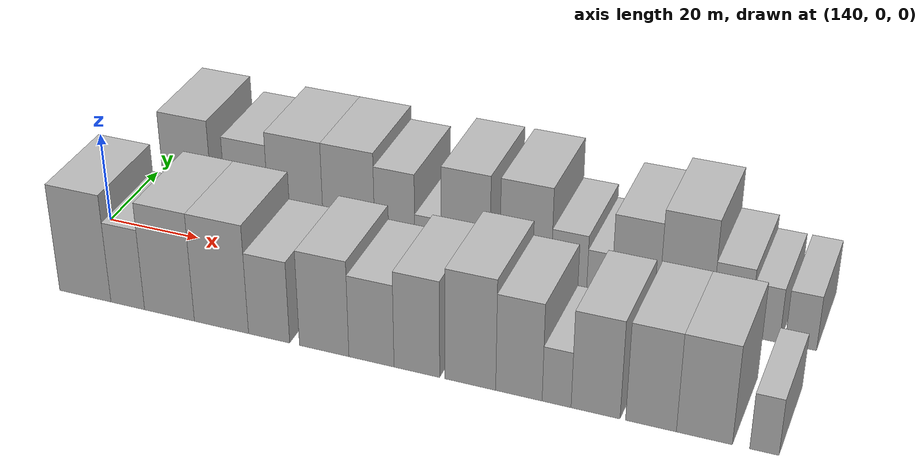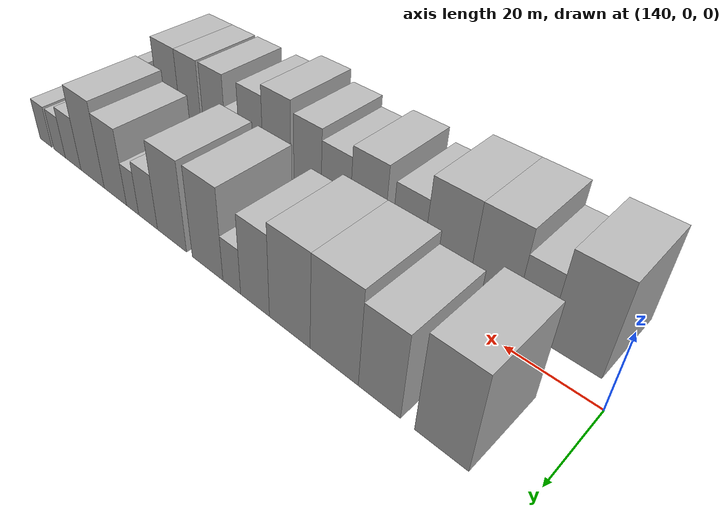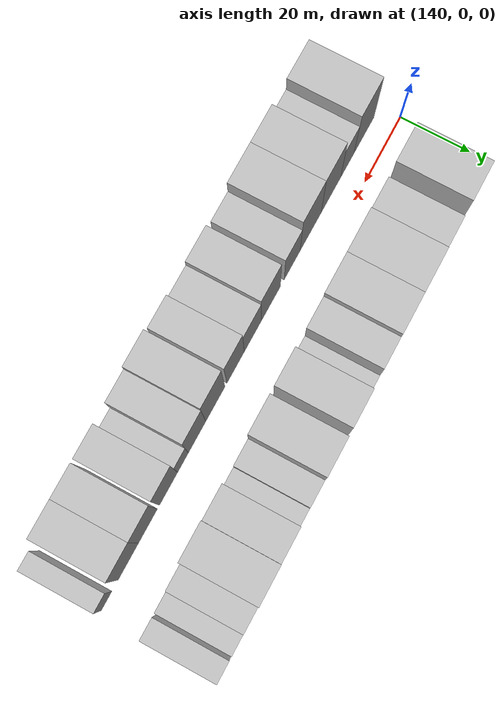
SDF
<sdf version="1.6">
 <world name="default">
  <model name="building_16">
   <static>1</static>
   <pose>155.1598 16.0000 0 0.000000 0.000000 1.570796</pose>
   <link name="link">
    <pose>0 0 12.00 0 0 0</pose>
    <collision name="collision"><geometry><box><size>20.0000 10.9359 24.0000</size></box></geometry></collision>
    <visual name="visual">
     <cast_shadows>0</cast_shadows>
     <geometry><box><size>20.0000 10.9359 24.0000</size></box></geometry>
     <material>
      <script>
       <uri>model://HANNAS_wall/materials/scripts</uri>
       <uri>model://HANNAS_wall/materials/textures</uri>
       <name>vrc/HANNAS_wall</name>
      </script>
     </material>
    </visual>
   </link>
  </model>
  <model name="building_17">
   <static>1</static>
   <pose>168.4141 16.0000 0 0.000000 0.000000 1.570796</pose>
   <link name="link">
    <pose>0 0 10.50 0 0 0</pose>
    <collision name="collision"><geometry><box><size>20.0000 9.5728 21.0000</size></box></geometry></collision>
    <visual name="visual">
     <cast_shadows>0</cast_shadows>
     <geometry><box><size>20.0000 9.5728 21.0000</size></box></geometry>
     <material>
      <script>
       <uri>model://HANNAS_wall/materials/scripts</uri>
       <uri>model://HANNAS_wall/materials/textures</uri>
       <name>vrc/HANNAS_wall</name>
      </script>
     </material>
    </visual>
   </link>
  </model>
  <model name="building_18">
   <static>1</static>
   <pose>179.1956 16.0000 0 0.000000 0.000000 1.570796</pose>
   <link name="link">
    <pose>0 0 12.00 0 0 0</pose>
    <collision name="collision"><geometry><box><size>20.0000 11.9902 24.0000</size></box></geometry></collision>
    <visual name="visual">
     <cast_shadows>0</cast_shadows>
     <geometry><box><size>20.0000 11.9902 24.0000</size></box></geometry>
     <material>
      <script>
       <uri>model://HANNAS_wall/materials/scripts</uri>
       <uri>model://HANNAS_wall/materials/textures</uri>
       <name>vrc/HANNAS_wall</name>
      </script>
     </material>
    </visual>
   </link>
  </model>
  <model name="building_19">
   <static>1</static>
   <pose>190.7309 16.0000 0 0.000000 0.000000 1.570796</pose>
   <link name="link">
    <pose>0 0 12.00 0 0 0</pose>
    <collision name="collision"><geometry><box><size>20.0000 11.0804 24.0000</size></box></geometry></collision>
    <visual name="visual">
     <cast_shadows>0</cast_shadows>
     <geometry><box><size>20.0000 11.0804 24.0000</size></box></geometry>
     <material>
      <script>
       <uri>model://HANNAS_wall/materials/scripts</uri>
       <uri>model://HANNAS_wall/materials/textures</uri>
       <name>vrc/HANNAS_wall</name>
      </script>
     </material>
    </visual>
   </link>
  </model>
  <model name="building_20">
   <static>1</static>
   <pose>200.5182 16.0000 0 0.000000 0.000000 1.570796</pose>
   <link name="link">
    <pose>0 0 10.50 0 0 0</pose>
    <collision name="collision"><geometry><box><size>20.0000 8.4941 21.0000</size></box></geometry></collision>
    <visual name="visual">
     <cast_shadows>0</cast_shadows>
     <geometry><box><size>20.0000 8.4941 21.0000</size></box></geometry>
     <material>
      <script>
       <uri>model://HANNAS_wall/materials/scripts</uri>
       <uri>model://HANNAS_wall/materials/textures</uri>
       <name>vrc/HANNAS_wall</name>
      </script>
     </material>
    </visual>
   </link>
  </model>
  <model name="building_21">
   <static>1</static>
   <pose>207.5212 16.0000 0 0.000000 0.000000 1.570796</pose>
   <link name="link">
    <pose>0 0 6.00 0 0 0</pose>
    <collision name="collision"><geometry><box><size>20.0000 5.5119 12.0000</size></box></geometry></collision>
    <visual name="visual">
     <cast_shadows>0</cast_shadows>
     <geometry><box><size>20.0000 5.5119 12.0000</size></box></geometry>
     <material>
      <script>
       <uri>model://HANNAS_wall/materials/scripts</uri>
       <uri>model://HANNAS_wall/materials/textures</uri>
       <name>vrc/HANNAS_wall</name>
      </script>
     </material>
    </visual>
   </link>
  </model>
  <model name="building_22">
   <static>1</static>
   <pose>215.3232 16.0000 0 0.000000 0.000000 1.570796</pose>
   <link name="link">
    <pose>0 0 12.00 0 0 0</pose>
    <collision name="collision"><geometry><box><size>20.0000 10.0920 24.0000</size></box></geometry></collision>
    <visual name="visual">
     <cast_shadows>0</cast_shadows>
     <geometry><box><size>20.0000 10.0920 24.0000</size></box></geometry>
     <material>
      <script>
       <uri>model://HANNAS_wall/materials/scripts</uri>
       <uri>model://HANNAS_wall/materials/textures</uri>
       <name>vrc/HANNAS_wall</name>
      </script>
     </material>
    </visual>
   </link>
  </model>
  <model name="building_23">
   <static>1</static>
   <pose>227.5798 16.0000 0 0.000000 0.000000 1.570796</pose>
   <link name="link">
    <pose>0 0 12.00 0 0 0</pose>
    <collision name="collision"><geometry><box><size>20.0000 10.4212 24.0000</size></box></geometry></collision>
    <visual name="visual">
     <cast_shadows>0</cast_shadows>
     <geometry><box><size>20.0000 10.4212 24.0000</size></box></geometry>
     <material>
      <script>
       <uri>model://HANNAS_wall/materials/scripts</uri>
       <uri>model://HANNAS_wall/materials/textures</uri>
       <name>vrc/HANNAS_wall</name>
      </script>
     </material>
    </visual>
   </link>
  </model>
  <model name="building_24">
   <static>1</static>
   <pose>236.3757 16.0000 0 0.000000 0.000000 1.570796</pose>
   <link name="link">
    <pose>0 0 7.50 0 0 0</pose>
    <collision name="collision"><geometry><box><size>20.0000 7.1706 15.0000</size></box></geometry></collision>
    <visual name="visual">
     <cast_shadows>0</cast_shadows>
     <geometry><box><size>20.0000 7.1706 15.0000</size></box></geometry>
     <material>
      <script>
       <uri>model://HANNAS_wall/materials/scripts</uri>
       <uri>model://HANNAS_wall/materials/textures</uri>
       <name>vrc/HANNAS_wall</name>
      </script>
     </material>
    </visual>
   </link>
  </model>
  <model name="building_25">
   <static>1</static>
   <pose>242.3878 16.0000 0 0.000000 0.000000 1.570796</pose>
   <link name="link">
    <pose>0 0 6.00 0 0 0</pose>
    <collision name="collision"><geometry><box><size>20.0000 4.8536 12.0000</size></box></geometry></collision>
    <visual name="visual">
     <cast_shadows>0</cast_shadows>
     <geometry><box><size>20.0000 4.8536 12.0000</size></box></geometry>
     <material>
      <script>
       <uri>model://HANNAS_wall/materials/scripts</uri>
       <uri>model://HANNAS_wall/materials/textures</uri>
       <name>vrc/HANNAS_wall</name>
      </script>
     </material>
    </visual>
   </link>
  </model>
  <model name="building_26">
   <static>1</static>
   <pose>249.4661 16.0000 0 0.000000 0.000000 1.570796</pose>
   <link name="link">
    <pose>0 0 10.50 0 0 0</pose>
    <collision name="collision"><geometry><box><size>20.0000 9.3031 21.0000</size></box></geometry></collision>
    <visual name="visual">
     <cast_shadows>0</cast_shadows>
     <geometry><box><size>20.0000 9.3031 21.0000</size></box></geometry>
     <material>
      <script>
       <uri>model://HANNAS_wall/materials/scripts</uri>
       <uri>model://HANNAS_wall/materials/textures</uri>
       <name>vrc/HANNAS_wall</name>
      </script>
     </material>
    </visual>
   </link>
  </model>
  <model name="building_27">
   <static>1</static>
   <pose>259.2833 16.0000 0 0.000000 0.000000 1.570796</pose>
   <link name="link">
    <pose>0 0 12.00 0 0 0</pose>
    <collision name="collision"><geometry><box><size>20.0000 10.3313 24.0000</size></box></geometry></collision>
    <visual name="visual">
     <cast_shadows>0</cast_shadows>
     <geometry><box><size>20.0000 10.3313 24.0000</size></box></geometry>
     <material>
      <script>
       <uri>model://HANNAS_wall/materials/scripts</uri>
       <uri>model://HANNAS_wall/materials/textures</uri>
       <name>vrc/HANNAS_wall</name>
      </script>
     </material>
    </visual>
   </link>
  </model>
  <model name="building_28">
   <static>1</static>
   <pose>268.1160 16.0000 0 0.000000 0.000000 1.570796</pose>
   <link name="link">
    <pose>0 0 7.50 0 0 0</pose>
    <collision name="collision"><geometry><box><size>20.0000 7.3340 15.0000</size></box></geometry></collision>
    <visual name="visual">
     <cast_shadows>0</cast_shadows>
     <geometry><box><size>20.0000 7.3340 15.0000</size></box></geometry>
     <material>
      <script>
       <uri>model://HANNAS_wall/materials/scripts</uri>
       <uri>model://HANNAS_wall/materials/textures</uri>
       <name>vrc/HANNAS_wall</name>
      </script>
     </material>
    </visual>
   </link>
  </model>
  <model name="building_29">
   <static>1</static>
   <pose>274.6098 16.0000 0 0.000000 0.000000 1.570796</pose>
   <link name="link">
    <pose>0 0 6.00 0 0 0</pose>
    <collision name="collision"><geometry><box><size>20.0000 5.6537 12.0000</size></box></geometry></collision>
    <visual name="visual">
     <cast_shadows>0</cast_shadows>
     <geometry><box><size>20.0000 5.6537 12.0000</size></box></geometry>
     <material>
      <script>
       <uri>model://HANNAS_wall/materials/scripts</uri>
       <uri>model://HANNAS_wall/materials/textures</uri>
       <name>vrc/HANNAS_wall</name>
      </script>
     </material>
    </visual>
   </link>
  </model>
  <model name="building_30">
   <static>1</static>
   <pose>281.3826 16.0000 0 0.000000 0.000000 1.570796</pose>
   <link name="link">
    <pose>0 0 6.00 0 0 0</pose>
    <collision name="collision"><geometry><box><size>20.0000 5.8918 12.0000</size></box></geometry></collision>
    <visual name="visual">
     <cast_shadows>0</cast_shadows>
     <geometry><box><size>20.0000 5.8918 12.0000</size></box></geometry>
     <material>
      <script>
       <uri>model://HANNAS_wall/materials/scripts</uri>
       <uri>model://HANNAS_wall/materials/textures</uri>
       <name>vrc/HANNAS_wall</name>
      </script>
     </material>
    </visual>
   </link>
  </model>
  <model name="building_44">
   <static>1</static>
   <pose>149.0768 -16.0000 0 0.000000 0.000000 1.570796</pose>
   <link name="link">
    <pose>0 0 12.00 0 0 0</pose>
    <collision name="collision"><geometry><box><size>20.0000 11.2204 24.0000</size></box></geometry></collision>
    <visual name="visual">
     <cast_shadows>0</cast_shadows>
     <geometry><box><size>20.0000 11.2204 24.0000</size></box></geometry>
     <material>
      <script>
       <uri>model://HANNAS_wall/materials/scripts</uri>
       <uri>model://HANNAS_wall/materials/textures</uri>
       <name>vrc/HANNAS_wall</name>
      </script>
     </material>
    </visual>
   </link>
  </model>
  <model name="building_45">
   <static>1</static>
   <pose>158.3275 -16.0000 0 0.000000 0.000000 1.570796</pose>
   <link name="link">
    <pose>0 0 9.00 0 0 0</pose>
    <collision name="collision"><geometry><box><size>20.0000 7.2811 18.0000</size></box></geometry></collision>
    <visual name="visual">
     <cast_shadows>0</cast_shadows>
     <geometry><box><size>20.0000 7.2811 18.0000</size></box></geometry>
     <material>
      <script>
       <uri>model://HANNAS_wall/materials/scripts</uri>
       <uri>model://HANNAS_wall/materials/textures</uri>
       <name>vrc/HANNAS_wall</name>
      </script>
     </material>
    </visual>
   </link>
  </model>
  <model name="building_46">
   <static>1</static>
   <pose>167.2682 -16.0000 0 0.000000 0.000000 1.570796</pose>
   <link name="link">
    <pose>0 0 12.00 0 0 0</pose>
    <collision name="collision"><geometry><box><size>20.0000 10.6003 24.0000</size></box></geometry></collision>
    <visual name="visual">
     <cast_shadows>0</cast_shadows>
     <geometry><box><size>20.0000 10.6003 24.0000</size></box></geometry>
     <material>
      <script>
       <uri>model://HANNAS_wall/materials/scripts</uri>
       <uri>model://HANNAS_wall/materials/textures</uri>
       <name>vrc/HANNAS_wall</name>
      </script>
     </material>
    </visual>
   </link>
  </model>
  <model name="building_47">
   <static>1</static>
   <pose>178.2266 -16.0000 0 0.000000 0.000000 1.570796</pose>
   <link name="link">
    <pose>0 0 12.00 0 0 0</pose>
    <collision name="collision"><geometry><box><size>20.0000 11.3165 24.0000</size></box></geometry></collision>
    <visual name="visual">
     <cast_shadows>0</cast_shadows>
     <geometry><box><size>20.0000 11.3165 24.0000</size></box></geometry>
     <material>
      <script>
       <uri>model://HANNAS_wall/materials/scripts</uri>
       <uri>model://HANNAS_wall/materials/textures</uri>
       <name>vrc/HANNAS_wall</name>
      </script>
     </material>
    </visual>
   </link>
  </model>
  <model name="building_48">
   <static>1</static>
   <pose>188.1027 -16.0000 0 0.000000 0.000000 1.570796</pose>
   <link name="link">
    <pose>0 0 9.00 0 0 0</pose>
    <collision name="collision"><geometry><box><size>20.0000 8.4357 18.0000</size></box></geometry></collision>
    <visual name="visual">
     <cast_shadows>0</cast_shadows>
     <geometry><box><size>20.0000 8.4357 18.0000</size></box></geometry>
     <material>
      <script>
       <uri>model://HANNAS_wall/materials/scripts</uri>
       <uri>model://HANNAS_wall/materials/textures</uri>
       <name>vrc/HANNAS_wall</name>
      </script>
     </material>
    </visual>
   </link>
  </model>
  <model name="building_49">
   <static>1</static>
   <pose>199.2969 -16.0000 0 0.000000 0.000000 1.570796</pose>
   <link name="link">
    <pose>0 0 10.50 0 0 0</pose>
    <collision name="collision"><geometry><box><size>20.0000 9.9527 21.0000</size></box></geometry></collision>
    <visual name="visual">
     <cast_shadows>0</cast_shadows>
     <geometry><box><size>20.0000 9.9527 21.0000</size></box></geometry>
     <material>
      <script>
       <uri>model://HANNAS_wall/materials/scripts</uri>
       <uri>model://HANNAS_wall/materials/textures</uri>
       <name>vrc/HANNAS_wall</name>
      </script>
     </material>
    </visual>
   </link>
  </model>
  <model name="building_50">
   <static>1</static>
   <pose>208.7404 -16.0000 0 0.000000 0.000000 1.570796</pose>
   <link name="link">
    <pose>0 0 9.00 0 0 0</pose>
    <collision name="collision"><geometry><box><size>20.0000 8.9342 18.0000</size></box></geometry></collision>
    <visual name="visual">
     <cast_shadows>0</cast_shadows>
     <geometry><box><size>20.0000 8.9342 18.0000</size></box></geometry>
     <material>
      <script>
       <uri>model://HANNAS_wall/materials/scripts</uri>
       <uri>model://HANNAS_wall/materials/textures</uri>
       <name>vrc/HANNAS_wall</name>
      </script>
     </material>
    </visual>
   </link>
  </model>
  <model name="building_51">
   <static>1</static>
   <pose>217.6510 -16.0000 0 0.000000 0.000000 1.570796</pose>
   <link name="link">
    <pose>0 0 10.50 0 0 0</pose>
    <collision name="collision"><geometry><box><size>20.0000 8.8870 21.0000</size></box></geometry></collision>
    <visual name="visual">
     <cast_shadows>0</cast_shadows>
     <geometry><box><size>20.0000 8.8870 21.0000</size></box></geometry>
     <material>
      <script>
       <uri>model://HANNAS_wall/materials/scripts</uri>
       <uri>model://HANNAS_wall/materials/textures</uri>
       <name>vrc/HANNAS_wall</name>
      </script>
     </material>
    </visual>
   </link>
  </model>
  <model name="building_52">
   <static>1</static>
   <pose>227.9590 -16.0000 0 0.000000 0.000000 1.570796</pose>
   <link name="link">
    <pose>0 0 12.00 0 0 0</pose>
    <collision name="collision"><geometry><box><size>20.0000 9.7291 24.0000</size></box></geometry></collision>
    <visual name="visual">
     <cast_shadows>0</cast_shadows>
     <geometry><box><size>20.0000 9.7291 24.0000</size></box></geometry>
     <material>
      <script>
       <uri>model://HANNAS_wall/materials/scripts</uri>
       <uri>model://HANNAS_wall/materials/textures</uri>
       <name>vrc/HANNAS_wall</name>
      </script>
     </material>
    </visual>
   </link>
  </model>
  <model name="building_53">
   <static>1</static>
   <pose>237.1881 -16.0000 0 0.000000 0.000000 1.570796</pose>
   <link name="link">
    <pose>0 0 10.50 0 0 0</pose>
    <collision name="collision"><geometry><box><size>20.0000 8.7290 21.0000</size></box></geometry></collision>
    <visual name="visual">
     <cast_shadows>0</cast_shadows>
     <geometry><box><size>20.0000 8.7290 21.0000</size></box></geometry>
     <material>
      <script>
       <uri>model://HANNAS_wall/materials/scripts</uri>
       <uri>model://HANNAS_wall/materials/textures</uri>
       <name>vrc/HANNAS_wall</name>
      </script>
     </material>
    </visual>
   </link>
  </model>
  <model name="building_54">
   <static>1</static>
   <pose>244.2414 -16.0000 0 0.000000 0.000000 1.570796</pose>
   <link name="link">
    <pose>0 0 6.00 0 0 0</pose>
    <collision name="collision"><geometry><box><size>20.0000 5.3777 12.0000</size></box></geometry></collision>
    <visual name="visual">
     <cast_shadows>0</cast_shadows>
     <geometry><box><size>20.0000 5.3777 12.0000</size></box></geometry>
     <material>
      <script>
       <uri>model://HANNAS_wall/materials/scripts</uri>
       <uri>model://HANNAS_wall/materials/textures</uri>
       <name>vrc/HANNAS_wall</name>
      </script>
     </material>
    </visual>
   </link>
  </model>
  <model name="building_55">
   <static>1</static>
   <pose>251.4212 -16.0000 0 0.000000 0.000000 1.570796</pose>
   <link name="link">
    <pose>0 0 10.50 0 0 0</pose>
    <collision name="collision"><geometry><box><size>20.0000 8.9819 21.0000</size></box></geometry></collision>
    <visual name="visual">
     <cast_shadows>0</cast_shadows>
     <geometry><box><size>20.0000 8.9819 21.0000</size></box></geometry>
     <material>
      <script>
       <uri>model://HANNAS_wall/materials/scripts</uri>
       <uri>model://HANNAS_wall/materials/textures</uri>
       <name>vrc/HANNAS_wall</name>
      </script>
     </material>
    </visual>
   </link>
  </model>
  <model name="building_56">
   <static>1</static>
   <pose>261.4788 -16.0000 0 0.000000 0.000000 1.570796</pose>
   <link name="link">
    <pose>0 0 10.50 0 0 0</pose>
    <collision name="collision"><geometry><box><size>20.0000 9.1332 21.0000</size></box></geometry></collision>
    <visual name="visual">
     <cast_shadows>0</cast_shadows>
     <geometry><box><size>20.0000 9.1332 21.0000</size></box></geometry>
     <material>
      <script>
       <uri>model://HANNAS_wall/materials/scripts</uri>
       <uri>model://HANNAS_wall/materials/textures</uri>
       <name>vrc/HANNAS_wall</name>
      </script>
     </material>
    </visual>
   </link>
  </model>
  <model name="building_57">
   <static>1</static>
   <pose>271.0019 -16.0000 0 0.000000 0.000000 1.570796</pose>
   <link name="link">
    <pose>0 0 10.50 0 0 0</pose>
    <collision name="collision"><geometry><box><size>20.0000 9.9130 21.0000</size></box></geometry></collision>
    <visual name="visual">
     <cast_shadows>0</cast_shadows>
     <geometry><box><size>20.0000 9.9130 21.0000</size></box></geometry>
     <material>
      <script>
       <uri>model://HANNAS_wall/materials/scripts</uri>
       <uri>model://HANNAS_wall/materials/textures</uri>
       <name>vrc/HANNAS_wall</name>
      </script>
     </material>
    </visual>
   </link>
  </model>
  <model name="building_58">
   <static>1</static>
   <pose>281.5092 -16.0000 0 0.000000 0.000000 1.570796</pose>
   <link name="link">
    <pose>0 0 6.00 0 0 0</pose>
    <collision name="collision"><geometry><box><size>20.0000 5.1017 12.0000</size></box></geometry></collision>
    <visual name="visual">
     <cast_shadows>0</cast_shadows>
     <geometry><box><size>20.0000 5.1017 12.0000</size></box></geometry>
     <material>
      <script>
       <uri>model://HANNAS_wall/materials/scripts</uri>
       <uri>model://HANNAS_wall/materials/textures</uri>
       <name>vrc/HANNAS_wall</name>
      </script>
     </material>
    </visual>
   </link>
  </model>
 </world>
</sdf>
